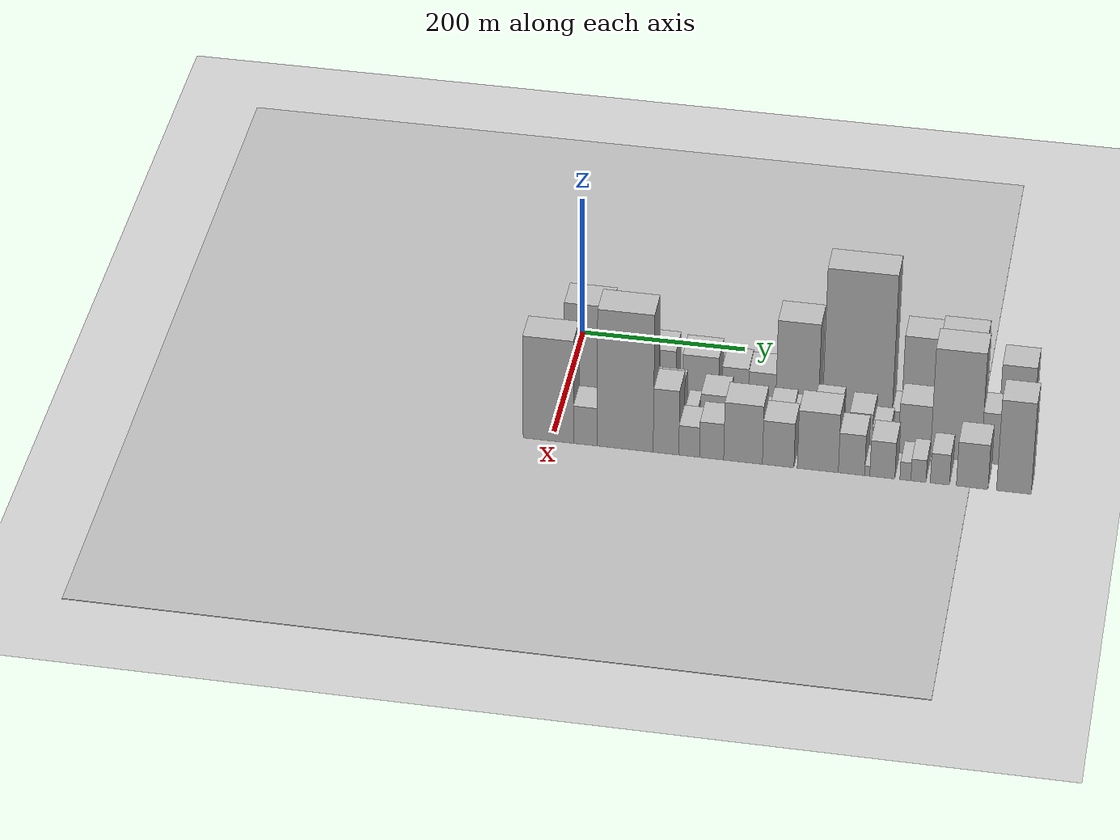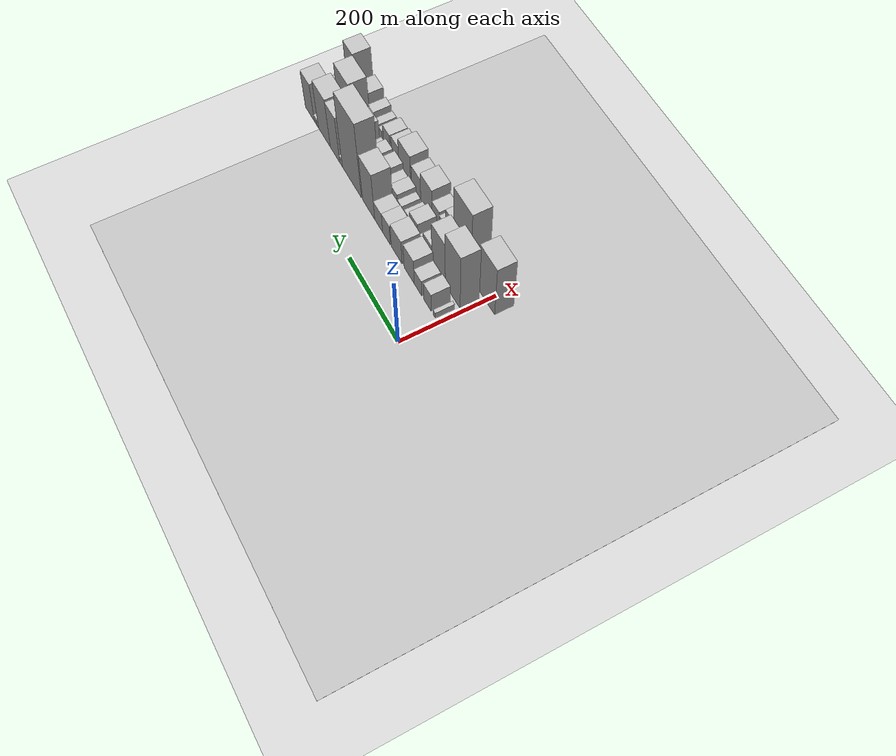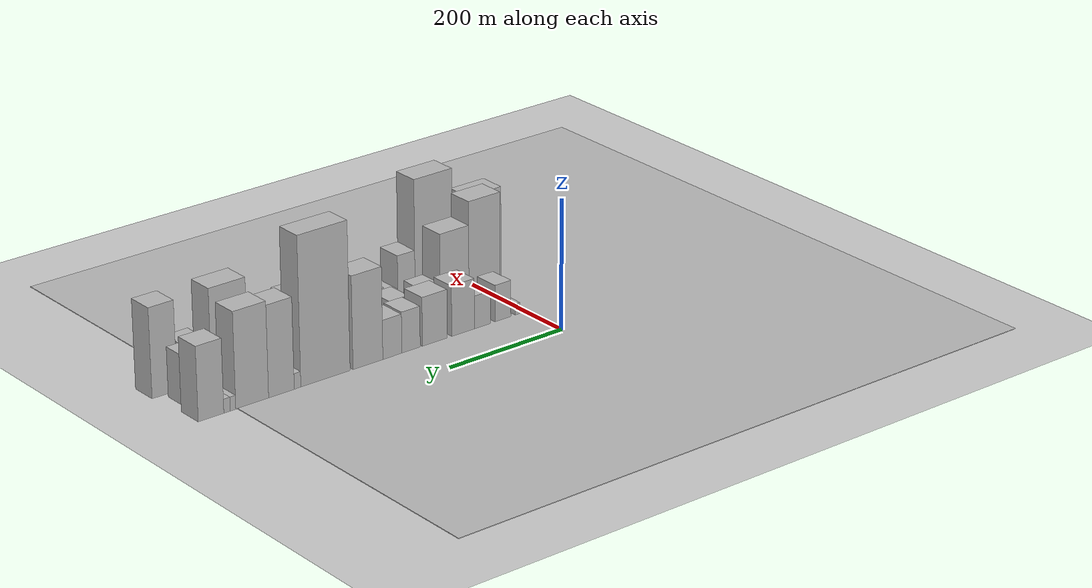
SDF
<sdf version="1.6">
 <world name="default">
  <include><name>ground_plane_1</name><uri>model://HANNAS_ground_plane</uri></include>
  <include>
   <name>ground_plane_2</name>
   <uri>model://HANNAS_ground_plane</uri>
   <pose>100 0 0  0 0 0</pose>
  </include>
  <model name="building_19">
   <static>1</static>
   <pose>100.0000 14.7461 0 0.000000 0.000000 0.000000</pose>
   <link name="link">
    <pose>0 0 9.00 0 0 0</pose>
    <collision name="collision"><geometry><box><size>40.0000 8.2760 18.0000</size></box></geometry></collision>
    <visual name="visual">
     <cast_shadows>0</cast_shadows>
     <geometry><box><size>40.0000 8.2760 18.0000</size></box></geometry>
     <material>
      <script>
       <uri>model://HANNAS_wall/materials/scripts</uri>
       <uri>model://HANNAS_wall/materials/textures</uri>
       <name>vrc/HANNAS_wall</name>
      </script>
     </material>
    </visual>
   </link>
  </model>
  <model name="building_20">
   <static>1</static>
   <pose>100.0000 41.2204 0 0.000000 0.000000 0.000000</pose>
   <link name="link">
    <pose>0 0 28.50 0 0 0</pose>
    <collision name="collision"><geometry><box><size>40.0000 28.6727 57.0000</size></box></geometry></collision>
    <visual name="visual">
     <cast_shadows>0</cast_shadows>
     <geometry><box><size>40.0000 28.6727 57.0000</size></box></geometry>
     <material>
      <script>
       <uri>model://HANNAS_wall/materials/scripts</uri>
       <uri>model://HANNAS_wall/materials/textures</uri>
       <name>vrc/HANNAS_wall</name>
      </script>
     </material>
    </visual>
   </link>
  </model>
  <model name="building_21">
   <static>1</static>
   <pose>100.0000 78.3445 0 0.000000 0.000000 0.000000</pose>
   <link name="link">
    <pose>0 0 25.50 0 0 0</pose>
    <collision name="collision"><geometry><box><size>40.0000 29.5755 51.0000</size></box></geometry></collision>
    <visual name="visual">
     <cast_shadows>0</cast_shadows>
     <geometry><box><size>40.0000 29.5755 51.0000</size></box></geometry>
     <material>
      <script>
       <uri>model://HANNAS_wall/materials/scripts</uri>
       <uri>model://HANNAS_wall/materials/textures</uri>
       <name>vrc/HANNAS_wall</name>
      </script>
     </material>
    </visual>
   </link>
  </model>
  <model name="building_22">
   <static>1</static>
   <pose>100.0000 113.4682 0 0.000000 0.000000 0.000000</pose>
   <link name="link">
    <pose>0 0 39.00 0 0 0</pose>
    <collision name="collision"><geometry><box><size>40.0000 40.6719 78.0000</size></box></geometry></collision>
    <visual name="visual">
     <cast_shadows>0</cast_shadows>
     <geometry><box><size>40.0000 40.6719 78.0000</size></box></geometry>
     <material>
      <script>
       <uri>model://HANNAS_wall/materials/scripts</uri>
       <uri>model://HANNAS_wall/materials/textures</uri>
       <name>vrc/HANNAS_wall</name>
      </script>
     </material>
    </visual>
   </link>
  </model>
  <model name="building_23">
   <static>1</static>
   <pose>100.0000 163.7614 0 0.000000 0.000000 0.000000</pose>
   <link name="link">
    <pose>0 0 37.50 0 0 0</pose>
    <collision name="collision"><geometry><box><size>40.0000 43.9146 75.0000</size></box></geometry></collision>
    <visual name="visual">
     <cast_shadows>0</cast_shadows>
     <geometry><box><size>40.0000 43.9146 75.0000</size></box></geometry>
     <material>
      <script>
       <uri>model://HANNAS_wall/materials/scripts</uri>
       <uri>model://HANNAS_wall/materials/textures</uri>
       <name>vrc/HANNAS_wall</name>
      </script>
     </material>
    </visual>
   </link>
  </model>
  <model name="building_24">
   <static>1</static>
   <pose>100.0000 205.7868 0 0.000000 0.000000 0.000000</pose>
   <link name="link">
    <pose>0 0 31.50 0 0 0</pose>
    <collision name="collision"><geometry><box><size>40.0000 32.1361 63.0000</size></box></geometry></collision>
    <visual name="visual">
     <cast_shadows>0</cast_shadows>
     <geometry><box><size>40.0000 32.1361 63.0000</size></box></geometry>
     <material>
      <script>
       <uri>model://HANNAS_wall/materials/scripts</uri>
       <uri>model://HANNAS_wall/materials/textures</uri>
       <name>vrc/HANNAS_wall</name>
      </script>
     </material>
    </visual>
   </link>
  </model>
  <model name="building_25">
   <static>1</static>
   <pose>100.0000 238.4247 0 0.000000 0.000000 0.000000</pose>
   <link name="link">
    <pose>0 0 30.00 0 0 0</pose>
    <collision name="collision"><geometry><box><size>40.0000 33.1398 60.0000</size></box></geometry></collision>
    <visual name="visual">
     <cast_shadows>0</cast_shadows>
     <geometry><box><size>40.0000 33.1398 60.0000</size></box></geometry>
     <material>
      <script>
       <uri>model://HANNAS_wall/materials/scripts</uri>
       <uri>model://HANNAS_wall/materials/textures</uri>
       <name>vrc/HANNAS_wall</name>
      </script>
     </material>
    </visual>
   </link>
  </model>
  <model name="building_26">
   <static>1</static>
   <pose>100.0000 280.7646 0 0.000000 0.000000 0.000000</pose>
   <link name="link">
    <pose>0 0 70.50 0 0 0</pose>
    <collision name="collision"><geometry><box><size>40.0000 51.5401 141.0000</size></box></geometry></collision>
    <visual name="visual">
     <cast_shadows>0</cast_shadows>
     <geometry><box><size>40.0000 51.5401 141.0000</size></box></geometry>
     <material>
      <script>
       <uri>model://HANNAS_wall/materials/scripts</uri>
       <uri>model://HANNAS_wall/materials/textures</uri>
       <name>vrc/HANNAS_wall</name>
      </script>
     </material>
    </visual>
   </link>
  </model>
  <model name="building_27">
   <static>1</static>
   <pose>100.0000 353.3509 0 0.000000 0.000000 0.000000</pose>
   <link name="link">
    <pose>0 0 112.50 0 0 0</pose>
    <collision name="collision"><geometry><box><size>40.0000 83.6324 225.0000</size></box></geometry></collision>
    <visual name="visual">
     <cast_shadows>0</cast_shadows>
     <geometry><box><size>40.0000 83.6324 225.0000</size></box></geometry>
     <material>
      <script>
       <uri>model://HANNAS_wall/materials/scripts</uri>
       <uri>model://HANNAS_wall/materials/textures</uri>
       <name>vrc/HANNAS_wall</name>
      </script>
     </material>
    </visual>
   </link>
  </model>
  <model name="building_28">
   <static>1</static>
   <pose>100.0000 400.6834 0 0.000000 0.000000 0.000000</pose>
   <link name="link">
    <pose>0 0 12.00 0 0 0</pose>
    <collision name="collision"><geometry><box><size>40.0000 11.0327 24.0000</size></box></geometry></collision>
    <visual name="visual">
     <cast_shadows>0</cast_shadows>
     <geometry><box><size>40.0000 11.0327 24.0000</size></box></geometry>
     <material>
      <script>
       <uri>model://HANNAS_wall/materials/scripts</uri>
       <uri>model://HANNAS_wall/materials/textures</uri>
       <name>vrc/HANNAS_wall</name>
      </script>
     </material>
    </visual>
   </link>
  </model>
  <model name="building_29">
   <static>1</static>
   <pose>100.0000 427.5657 0 0.000000 0.000000 0.000000</pose>
   <link name="link">
    <pose>0 0 69.00 0 0 0</pose>
    <collision name="collision"><geometry><box><size>40.0000 42.7318 138.0000</size></box></geometry></collision>
    <visual name="visual">
     <cast_shadows>0</cast_shadows>
     <geometry><box><size>40.0000 42.7318 138.0000</size></box></geometry>
     <material>
      <script>
       <uri>model://HANNAS_wall/materials/scripts</uri>
       <uri>model://HANNAS_wall/materials/textures</uri>
       <name>vrc/HANNAS_wall</name>
      </script>
     </material>
    </visual>
   </link>
  </model>
  <model name="building_30">
   <static>1</static>
   <pose>100.0000 476.0286 0 0.000000 0.000000 0.000000</pose>
   <link name="link">
    <pose>0 0 72.00 0 0 0</pose>
    <collision name="collision"><geometry><box><size>40.0000 54.1939 144.0000</size></box></geometry></collision>
    <visual name="visual">
     <cast_shadows>0</cast_shadows>
     <geometry><box><size>40.0000 54.1939 144.0000</size></box></geometry>
     <material>
      <script>
       <uri>model://HANNAS_wall/materials/scripts</uri>
       <uri>model://HANNAS_wall/materials/textures</uri>
       <name>vrc/HANNAS_wall</name>
      </script>
     </material>
    </visual>
   </link>
  </model>
  <model name="building_31">
   <static>1</static>
   <pose>100.0000 507.6164 0 0.000000 0.000000 0.000000</pose>
   <link name="link">
    <pose>0 0 10.50 0 0 0</pose>
    <collision name="collision"><geometry><box><size>40.0000 8.9817 21.0000</size></box></geometry></collision>
    <visual name="visual">
     <cast_shadows>0</cast_shadows>
     <geometry><box><size>40.0000 8.9817 21.0000</size></box></geometry>
     <material>
      <script>
       <uri>model://HANNAS_wall/materials/scripts</uri>
       <uri>model://HANNAS_wall/materials/textures</uri>
       <name>vrc/HANNAS_wall</name>
      </script>
     </material>
    </visual>
   </link>
  </model>
  <model name="building_32">
   <static>1</static>
   <pose>100.0000 517.3540 0 0.000000 0.000000 0.000000</pose>
   <link name="link">
    <pose>0 0 10.50 0 0 0</pose>
    <collision name="collision"><geometry><box><size>40.0000 10.4935 21.0000</size></box></geometry></collision>
    <visual name="visual">
     <cast_shadows>0</cast_shadows>
     <geometry><box><size>40.0000 10.4935 21.0000</size></box></geometry>
     <material>
      <script>
       <uri>model://HANNAS_wall/materials/scripts</uri>
       <uri>model://HANNAS_wall/materials/textures</uri>
       <name>vrc/HANNAS_wall</name>
      </script>
     </material>
    </visual>
   </link>
  </model>
  <model name="building_33">
   <static>1</static>
   <pose>100.0000 543.4037 0 0.000000 0.000000 0.000000</pose>
   <link name="link">
    <pose>0 0 55.50 0 0 0</pose>
    <collision name="collision"><geometry><box><size>40.0000 41.6059 111.0000</size></box></geometry></collision>
    <visual name="visual">
     <cast_shadows>0</cast_shadows>
     <geometry><box><size>40.0000 41.6059 111.0000</size></box></geometry>
     <material>
      <script>
       <uri>model://HANNAS_wall/materials/scripts</uri>
       <uri>model://HANNAS_wall/materials/textures</uri>
       <name>vrc/HANNAS_wall</name>
      </script>
     </material>
    </visual>
   </link>
  </model>
  <model name="building_48">
   <static>1</static>
   <pose>149.0000 35.4061 0 0.000000 0.000000 0.000000</pose>
   <link name="link">
    <pose>0 0 85.50 0 0 0</pose>
    <collision name="collision"><geometry><box><size>40.0000 56.8325 171.0000</size></box></geometry></collision>
    <visual name="visual">
     <cast_shadows>0</cast_shadows>
     <geometry><box><size>40.0000 56.8325 171.0000</size></box></geometry>
     <material>
      <script>
       <uri>model://HANNAS_wall/materials/scripts</uri>
       <uri>model://HANNAS_wall/materials/textures</uri>
       <name>vrc/HANNAS_wall</name>
      </script>
     </material>
    </visual>
   </link>
  </model>
  <model name="building_49">
   <static>1</static>
   <pose>149.0000 89.7302 0 0.000000 0.000000 0.000000</pose>
   <link name="link">
    <pose>0 0 67.50 0 0 0</pose>
    <collision name="collision"><geometry><box><size>40.0000 51.8155 135.0000</size></box></geometry></collision>
    <visual name="visual">
     <cast_shadows>0</cast_shadows>
     <geometry><box><size>40.0000 51.8155 135.0000</size></box></geometry>
     <material>
      <script>
       <uri>model://HANNAS_wall/materials/scripts</uri>
       <uri>model://HANNAS_wall/materials/textures</uri>
       <name>vrc/HANNAS_wall</name>
      </script>
     </material>
    </visual>
   </link>
  </model>
  <model name="building_50">
   <static>1</static>
   <pose>149.0000 132.5936 0 0.000000 0.000000 0.000000</pose>
   <link name="link">
    <pose>0 0 30.00 0 0 0</pose>
    <collision name="collision"><geometry><box><size>40.0000 33.9114 60.0000</size></box></geometry></collision>
    <visual name="visual">
     <cast_shadows>0</cast_shadows>
     <geometry><box><size>40.0000 33.9114 60.0000</size></box></geometry>
     <material>
      <script>
       <uri>model://HANNAS_wall/materials/scripts</uri>
       <uri>model://HANNAS_wall/materials/textures</uri>
       <name>vrc/HANNAS_wall</name>
      </script>
     </material>
    </visual>
   </link>
  </model>
  <model name="building_51">
   <static>1</static>
   <pose>149.0000 160.1302 0 0.000000 0.000000 0.000000</pose>
   <link name="link">
    <pose>0 0 15.00 0 0 0</pose>
    <collision name="collision"><geometry><box><size>40.0000 15.1618 30.0000</size></box></geometry></collision>
    <visual name="visual">
     <cast_shadows>0</cast_shadows>
     <geometry><box><size>40.0000 15.1618 30.0000</size></box></geometry>
     <material>
      <script>
       <uri>model://HANNAS_wall/materials/scripts</uri>
       <uri>model://HANNAS_wall/materials/textures</uri>
       <name>vrc/HANNAS_wall</name>
      </script>
     </material>
    </visual>
   </link>
  </model>
  <model name="building_52">
   <static>1</static>
   <pose>149.0000 188.1848 0 0.000000 0.000000 0.000000</pose>
   <link name="link">
    <pose>0 0 28.50 0 0 0</pose>
    <collision name="collision"><geometry><box><size>40.0000 32.9474 57.0000</size></box></geometry></collision>
    <visual name="visual">
     <cast_shadows>0</cast_shadows>
     <geometry><box><size>40.0000 32.9474 57.0000</size></box></geometry>
     <material>
      <script>
       <uri>model://HANNAS_wall/materials/scripts</uri>
       <uri>model://HANNAS_wall/materials/textures</uri>
       <name>vrc/HANNAS_wall</name>
      </script>
     </material>
    </visual>
   </link>
  </model>
  <model name="building_53">
   <static>1</static>
   <pose>149.0000 215.3562 0 0.000000 0.000000 0.000000</pose>
   <link name="link">
    <pose>0 0 18.00 0 0 0</pose>
    <collision name="collision"><geometry><box><size>40.0000 21.3953 36.0000</size></box></geometry></collision>
    <visual name="visual">
     <cast_shadows>0</cast_shadows>
     <geometry><box><size>40.0000 21.3953 36.0000</size></box></geometry>
     <material>
      <script>
       <uri>model://HANNAS_wall/materials/scripts</uri>
       <uri>model://HANNAS_wall/materials/textures</uri>
       <name>vrc/HANNAS_wall</name>
      </script>
     </material>
    </visual>
   </link>
  </model>
  <model name="building_54">
   <static>1</static>
   <pose>149.0000 245.1395 0 0.000000 0.000000 0.000000</pose>
   <link name="link">
    <pose>0 0 16.50 0 0 0</pose>
    <collision name="collision"><geometry><box><size>40.0000 18.1711 33.0000</size></box></geometry></collision>
    <visual name="visual">
     <cast_shadows>0</cast_shadows>
     <geometry><box><size>40.0000 18.1711 33.0000</size></box></geometry>
     <material>
      <script>
       <uri>model://HANNAS_wall/materials/scripts</uri>
       <uri>model://HANNAS_wall/materials/textures</uri>
       <name>vrc/HANNAS_wall</name>
      </script>
     </material>
    </visual>
   </link>
  </model>
  <model name="building_55">
   <static>1</static>
   <pose>149.0000 268.5997 0 0.000000 0.000000 0.000000</pose>
   <link name="link">
    <pose>0 0 24.00 0 0 0</pose>
    <collision name="collision"><geometry><box><size>40.0000 28.7493 48.0000</size></box></geometry></collision>
    <visual name="visual">
     <cast_shadows>0</cast_shadows>
     <geometry><box><size>40.0000 28.7493 48.0000</size></box></geometry>
     <material>
      <script>
       <uri>model://HANNAS_wall/materials/scripts</uri>
       <uri>model://HANNAS_wall/materials/textures</uri>
       <name>vrc/HANNAS_wall</name>
      </script>
     </material>
    </visual>
   </link>
  </model>
  <model name="building_56">
   <static>1</static>
   <pose>149.0000 294.9699 0 0.000000 0.000000 0.000000</pose>
   <link name="link">
    <pose>0 0 21.00 0 0 0</pose>
    <collision name="collision"><geometry><box><size>40.0000 23.9913 42.0000</size></box></geometry></collision>
    <visual name="visual">
     <cast_shadows>0</cast_shadows>
     <geometry><box><size>40.0000 23.9913 42.0000</size></box></geometry>
     <material>
      <script>
       <uri>model://HANNAS_wall/materials/scripts</uri>
       <uri>model://HANNAS_wall/materials/textures</uri>
       <name>vrc/HANNAS_wall</name>
      </script>
     </material>
    </visual>
   </link>
  </model>
  <model name="building_57">
   <static>1</static>
   <pose>149.0000 323.3879 0 0.000000 0.000000 0.000000</pose>
   <link name="link">
    <pose>0 0 30.00 0 0 0</pose>
    <collision name="collision"><geometry><box><size>40.0000 32.8447 60.0000</size></box></geometry></collision>
    <visual name="visual">
     <cast_shadows>0</cast_shadows>
     <geometry><box><size>40.0000 32.8447 60.0000</size></box></geometry>
     <material>
      <script>
       <uri>model://HANNAS_wall/materials/scripts</uri>
       <uri>model://HANNAS_wall/materials/textures</uri>
       <name>vrc/HANNAS_wall</name>
      </script>
     </material>
    </visual>
   </link>
  </model>
  <model name="building_58">
   <static>1</static>
   <pose>149.0000 363.7489 0 0.000000 0.000000 0.000000</pose>
   <link name="link">
    <pose>0 0 27.00 0 0 0</pose>
    <collision name="collision"><geometry><box><size>40.0000 27.8772 54.0000</size></box></geometry></collision>
    <visual name="visual">
     <cast_shadows>0</cast_shadows>
     <geometry><box><size>40.0000 27.8772 54.0000</size></box></geometry>
     <material>
      <script>
       <uri>model://HANNAS_wall/materials/scripts</uri>
       <uri>model://HANNAS_wall/materials/textures</uri>
       <name>vrc/HANNAS_wall</name>
      </script>
     </material>
    </visual>
   </link>
  </model>
  <model name="building_59">
   <static>1</static>
   <pose>149.0000 388.2658 0 0.000000 0.000000 0.000000</pose>
   <link name="link">
    <pose>0 0 18.00 0 0 0</pose>
    <collision name="collision"><geometry><box><size>40.0000 21.1565 36.0000</size></box></geometry></collision>
    <visual name="visual">
     <cast_shadows>0</cast_shadows>
     <geometry><box><size>40.0000 21.1565 36.0000</size></box></geometry>
     <material>
      <script>
       <uri>model://HANNAS_wall/materials/scripts</uri>
       <uri>model://HANNAS_wall/materials/textures</uri>
       <name>vrc/HANNAS_wall</name>
      </script>
     </material>
    </visual>
   </link>
  </model>
  <model name="building_60">
   <static>1</static>
   <pose>149.0000 428.1776 0 0.000000 0.000000 0.000000</pose>
   <link name="link">
    <pose>0 0 37.50 0 0 0</pose>
    <collision name="collision"><geometry><box><size>40.0000 38.6672 75.0000</size></box></geometry></collision>
    <visual name="visual">
     <cast_shadows>0</cast_shadows>
     <geometry><box><size>40.0000 38.6672 75.0000</size></box></geometry>
     <material>
      <script>
       <uri>model://HANNAS_wall/materials/scripts</uri>
       <uri>model://HANNAS_wall/materials/textures</uri>
       <name>vrc/HANNAS_wall</name>
      </script>
     </material>
    </visual>
   </link>
  </model>
  <model name="building_61">
   <static>1</static>
   <pose>149.0000 477.5327 0 0.000000 0.000000 0.000000</pose>
   <link name="link">
    <pose>0 0 81.00 0 0 0</pose>
    <collision name="collision"><geometry><box><size>40.0000 60.0431 162.0000</size></box></geometry></collision>
    <visual name="visual">
     <cast_shadows>0</cast_shadows>
     <geometry><box><size>40.0000 60.0431 162.0000</size></box></geometry>
     <material>
      <script>
       <uri>model://HANNAS_wall/materials/scripts</uri>
       <uri>model://HANNAS_wall/materials/textures</uri>
       <name>vrc/HANNAS_wall</name>
      </script>
     </material>
    </visual>
   </link>
  </model>
  <model name="building_62">
   <static>1</static>
   <pose>149.0000 529.7712 0 0.000000 0.000000 0.000000</pose>
   <link name="link">
    <pose>0 0 37.50 0 0 0</pose>
    <collision name="collision"><geometry><box><size>40.0000 44.4337 75.0000</size></box></geometry></collision>
    <visual name="visual">
     <cast_shadows>0</cast_shadows>
     <geometry><box><size>40.0000 44.4337 75.0000</size></box></geometry>
     <material>
      <script>
       <uri>model://HANNAS_wall/materials/scripts</uri>
       <uri>model://HANNAS_wall/materials/textures</uri>
       <name>vrc/HANNAS_wall</name>
      </script>
     </material>
    </visual>
   </link>
  </model>
  <model name="building_79">
   <static>1</static>
   <pose>198.0000 -3.8036 0 0.000000 0.000000 0.000000</pose>
   <link name="link">
    <pose>0 0 76.50 0 0 0</pose>
    <collision name="collision"><geometry><box><size>40.0000 60.7007 153.0000</size></box></geometry></collision>
    <visual name="visual">
     <cast_shadows>0</cast_shadows>
     <geometry><box><size>40.0000 60.7007 153.0000</size></box></geometry>
     <material>
      <script>
       <uri>model://HANNAS_wall/materials/scripts</uri>
       <uri>model://HANNAS_wall/materials/textures</uri>
       <name>vrc/HANNAS_wall</name>
      </script>
     </material>
    </visual>
   </link>
  </model>
  <model name="building_80">
   <static>1</static>
   <pose>198.0000 40.7986 0 0.000000 0.000000 0.000000</pose>
   <link name="link">
    <pose>0 0 28.50 0 0 0</pose>
    <collision name="collision"><geometry><box><size>40.0000 28.5036 57.0000</size></box></geometry></collision>
    <visual name="visual">
     <cast_shadows>0</cast_shadows>
     <geometry><box><size>40.0000 28.5036 57.0000</size></box></geometry>
     <material>
      <script>
       <uri>model://HANNAS_wall/materials/scripts</uri>
       <uri>model://HANNAS_wall/materials/textures</uri>
       <name>vrc/HANNAS_wall</name>
      </script>
     </material>
    </visual>
   </link>
  </model>
  <model name="building_81">
   <static>1</static>
   <pose>198.0000 88.8150 0 0.000000 0.000000 0.000000</pose>
   <link name="link">
    <pose>0 0 102.00 0 0 0</pose>
    <collision name="collision"><geometry><box><size>40.0000 67.5292 204.0000</size></box></geometry></collision>
    <visual name="visual">
     <cast_shadows>0</cast_shadows>
     <geometry><box><size>40.0000 67.5292 204.0000</size></box></geometry>
     <material>
      <script>
       <uri>model://HANNAS_wall/materials/scripts</uri>
       <uri>model://HANNAS_wall/materials/textures</uri>
       <name>vrc/HANNAS_wall</name>
      </script>
     </material>
    </visual>
   </link>
  </model>
  <model name="building_82">
   <static>1</static>
   <pose>198.0000 138.0102 0 0.000000 0.000000 0.000000</pose>
   <link name="link">
    <pose>0 0 48.00 0 0 0</pose>
    <collision name="collision"><geometry><box><size>40.0000 30.8612 96.0000</size></box></geometry></collision>
    <visual name="visual">
     <cast_shadows>0</cast_shadows>
     <geometry><box><size>40.0000 30.8612 96.0000</size></box></geometry>
     <material>
      <script>
       <uri>model://HANNAS_wall/materials/scripts</uri>
       <uri>model://HANNAS_wall/materials/textures</uri>
       <name>vrc/HANNAS_wall</name>
      </script>
     </material>
    </visual>
   </link>
  </model>
  <model name="building_83">
   <static>1</static>
   <pose>198.0000 165.8432 0 0.000000 0.000000 0.000000</pose>
   <link name="link">
    <pose>0 0 22.50 0 0 0</pose>
    <collision name="collision"><geometry><box><size>40.0000 24.8048 45.0000</size></box></geometry></collision>
    <visual name="visual">
     <cast_shadows>0</cast_shadows>
     <geometry><box><size>40.0000 24.8048 45.0000</size></box></geometry>
     <material>
      <script>
       <uri>model://HANNAS_wall/materials/scripts</uri>
       <uri>model://HANNAS_wall/materials/textures</uri>
       <name>vrc/HANNAS_wall</name>
      </script>
     </material>
    </visual>
   </link>
  </model>
  <model name="building_84">
   <static>1</static>
   <pose>198.0000 192.7235 0 0.000000 0.000000 0.000000</pose>
   <link name="link">
    <pose>0 0 27.00 0 0 0</pose>
    <collision name="collision"><geometry><box><size>40.0000 28.9558 54.0000</size></box></geometry></collision>
    <visual name="visual">
     <cast_shadows>0</cast_shadows>
     <geometry><box><size>40.0000 28.9558 54.0000</size></box></geometry>
     <material>
      <script>
       <uri>model://HANNAS_wall/materials/scripts</uri>
       <uri>model://HANNAS_wall/materials/textures</uri>
       <name>vrc/HANNAS_wall</name>
      </script>
     </material>
    </visual>
   </link>
  </model>
  <model name="building_85">
   <static>1</static>
   <pose>198.0000 230.3727 0 0.000000 0.000000 0.000000</pose>
   <link name="link">
    <pose>0 0 43.50 0 0 0</pose>
    <collision name="collision"><geometry><box><size>40.0000 46.3426 87.0000</size></box></geometry></collision>
    <visual name="visual">
     <cast_shadows>0</cast_shadows>
     <geometry><box><size>40.0000 46.3426 87.0000</size></box></geometry>
     <material>
      <script>
       <uri>model://HANNAS_wall/materials/scripts</uri>
       <uri>model://HANNAS_wall/materials/textures</uri>
       <name>vrc/HANNAS_wall</name>
      </script>
     </material>
    </visual>
   </link>
  </model>
  <model name="building_86">
   <static>1</static>
   <pose>198.0000 272.3674 0 0.000000 0.000000 0.000000</pose>
   <link name="link">
    <pose>0 0 33.00 0 0 0</pose>
    <collision name="collision"><geometry><box><size>40.0000 37.6469 66.0000</size></box></geometry></collision>
    <visual name="visual">
     <cast_shadows>0</cast_shadows>
     <geometry><box><size>40.0000 37.6469 66.0000</size></box></geometry>
     <material>
      <script>
       <uri>model://HANNAS_wall/materials/scripts</uri>
       <uri>model://HANNAS_wall/materials/textures</uri>
       <name>vrc/HANNAS_wall</name>
      </script>
     </material>
    </visual>
   </link>
  </model>
  <model name="building_87">
   <static>1</static>
   <pose>198.0000 319.6381 0 0.000000 0.000000 0.000000</pose>
   <link name="link">
    <pose>0 0 43.50 0 0 0</pose>
    <collision name="collision"><geometry><box><size>40.0000 48.8944 87.0000</size></box></geometry></collision>
    <visual name="visual">
     <cast_shadows>0</cast_shadows>
     <geometry><box><size>40.0000 48.8944 87.0000</size></box></geometry>
     <material>
      <script>
       <uri>model://HANNAS_wall/materials/scripts</uri>
       <uri>model://HANNAS_wall/materials/textures</uri>
       <name>vrc/HANNAS_wall</name>
      </script>
     </material>
    </visual>
   </link>
  </model>
  <model name="building_88">
   <static>1</static>
   <pose>198.0000 359.7158 0 0.000000 0.000000 0.000000</pose>
   <link name="link">
    <pose>0 0 30.00 0 0 0</pose>
    <collision name="collision"><geometry><box><size>40.0000 31.2609 60.0000</size></box></geometry></collision>
    <visual name="visual">
     <cast_shadows>0</cast_shadows>
     <geometry><box><size>40.0000 31.2609 60.0000</size></box></geometry>
     <material>
      <script>
       <uri>model://HANNAS_wall/materials/scripts</uri>
       <uri>model://HANNAS_wall/materials/textures</uri>
       <name>vrc/HANNAS_wall</name>
      </script>
     </material>
    </visual>
   </link>
  </model>
  <model name="building_89">
   <static>1</static>
   <pose>198.0000 378.4162 0 0.000000 0.000000 0.000000</pose>
   <link name="link">
    <pose>0 0 7.50 0 0 0</pose>
    <collision name="collision"><geometry><box><size>40.0000 6.1398 15.0000</size></box></geometry></collision>
    <visual name="visual">
     <cast_shadows>0</cast_shadows>
     <geometry><box><size>40.0000 6.1398 15.0000</size></box></geometry>
     <material>
      <script>
       <uri>model://HANNAS_wall/materials/scripts</uri>
       <uri>model://HANNAS_wall/materials/textures</uri>
       <name>vrc/HANNAS_wall</name>
      </script>
     </material>
    </visual>
   </link>
  </model>
  <model name="building_90">
   <static>1</static>
   <pose>198.0000 396.3616 0 0.000000 0.000000 0.000000</pose>
   <link name="link">
    <pose>0 0 27.00 0 0 0</pose>
    <collision name="collision"><geometry><box><size>40.0000 29.7510 54.0000</size></box></geometry></collision>
    <visual name="visual">
     <cast_shadows>0</cast_shadows>
     <geometry><box><size>40.0000 29.7510 54.0000</size></box></geometry>
     <material>
      <script>
       <uri>model://HANNAS_wall/materials/scripts</uri>
       <uri>model://HANNAS_wall/materials/textures</uri>
       <name>vrc/HANNAS_wall</name>
      </script>
     </material>
    </visual>
   </link>
  </model>
  <model name="building_91">
   <static>1</static>
   <pose>198.0000 423.7299 0 0.000000 0.000000 0.000000</pose>
   <link name="link">
    <pose>0 0 13.50 0 0 0</pose>
    <collision name="collision"><geometry><box><size>40.0000 12.9857 27.0000</size></box></geometry></collision>
    <visual name="visual">
     <cast_shadows>0</cast_shadows>
     <geometry><box><size>40.0000 12.9857 27.0000</size></box></geometry>
     <material>
      <script>
       <uri>model://HANNAS_wall/materials/scripts</uri>
       <uri>model://HANNAS_wall/materials/textures</uri>
       <name>vrc/HANNAS_wall</name>
      </script>
     </material>
    </visual>
   </link>
  </model>
  <model name="building_92">
   <static>1</static>
   <pose>198.0000 439.2100 0 0.000000 0.000000 0.000000</pose>
   <link name="link">
    <pose>0 0 16.50 0 0 0</pose>
    <collision name="collision"><geometry><box><size>40.0000 17.9745 33.0000</size></box></geometry></collision>
    <visual name="visual">
     <cast_shadows>0</cast_shadows>
     <geometry><box><size>40.0000 17.9745 33.0000</size></box></geometry>
     <material>
      <script>
       <uri>model://HANNAS_wall/materials/scripts</uri>
       <uri>model://HANNAS_wall/materials/textures</uri>
       <name>vrc/HANNAS_wall</name>
      </script>
     </material>
    </visual>
   </link>
  </model>
  <model name="building_93">
   <static>1</static>
   <pose>198.0000 464.6457 0 0.000000 0.000000 0.000000</pose>
   <link name="link">
    <pose>0 0 22.50 0 0 0</pose>
    <collision name="collision"><geometry><box><size>40.0000 22.8971 45.0000</size></box></geometry></collision>
    <visual name="visual">
     <cast_shadows>0</cast_shadows>
     <geometry><box><size>40.0000 22.8971 45.0000</size></box></geometry>
     <material>
      <script>
       <uri>model://HANNAS_wall/materials/scripts</uri>
       <uri>model://HANNAS_wall/materials/textures</uri>
       <name>vrc/HANNAS_wall</name>
      </script>
     </material>
    </visual>
   </link>
  </model>
  <model name="building_94">
   <static>1</static>
   <pose>198.0000 502.7975 0 0.000000 0.000000 0.000000</pose>
   <link name="link">
    <pose>0 0 33.00 0 0 0</pose>
    <collision name="collision"><geometry><box><size>40.0000 37.4065 66.0000</size></box></geometry></collision>
    <visual name="visual">
     <cast_shadows>0</cast_shadows>
     <geometry><box><size>40.0000 37.4065 66.0000</size></box></geometry>
     <material>
      <script>
       <uri>model://HANNAS_wall/materials/scripts</uri>
       <uri>model://HANNAS_wall/materials/textures</uri>
       <name>vrc/HANNAS_wall</name>
      </script>
     </material>
    </visual>
   </link>
  </model>
  <model name="building_95">
   <static>1</static>
   <pose>198.0000 551.9234 0 0.000000 0.000000 0.000000</pose>
   <link name="link">
    <pose>0 0 67.50 0 0 0</pose>
    <collision name="collision"><geometry><box><size>40.0000 40.8452 135.0000</size></box></geometry></collision>
    <visual name="visual">
     <cast_shadows>0</cast_shadows>
     <geometry><box><size>40.0000 40.8452 135.0000</size></box></geometry>
     <material>
      <script>
       <uri>model://HANNAS_wall/materials/scripts</uri>
       <uri>model://HANNAS_wall/materials/textures</uri>
       <name>vrc/HANNAS_wall</name>
      </script>
     </material>
    </visual>
   </link>
  </model>
 </world>
</sdf>
